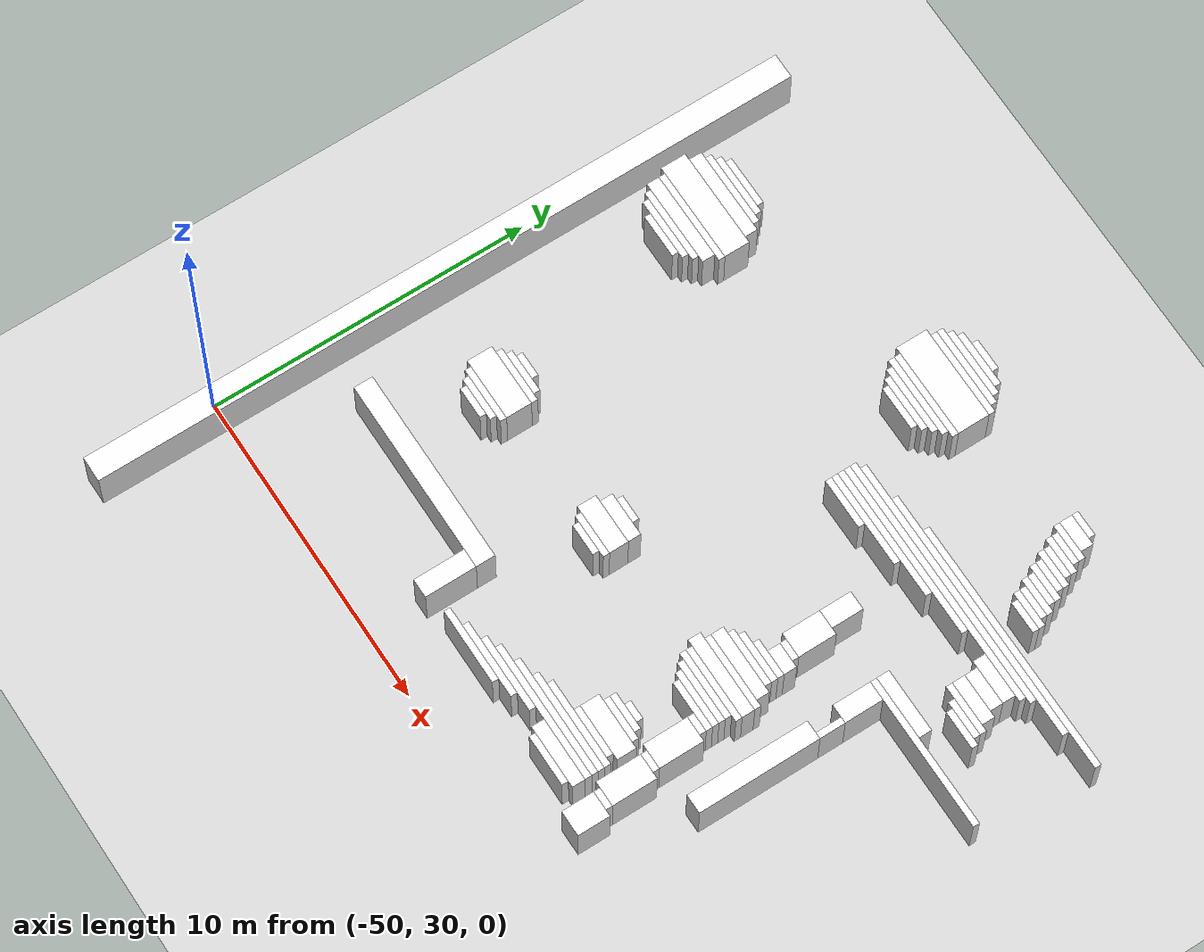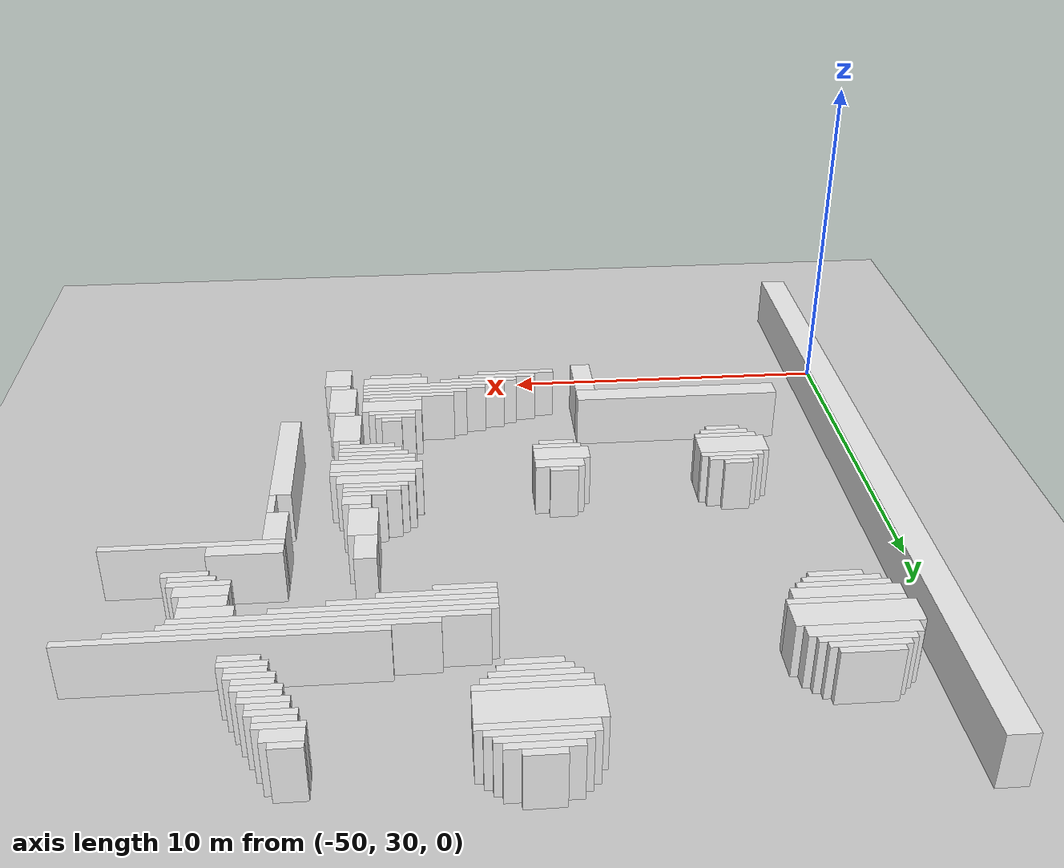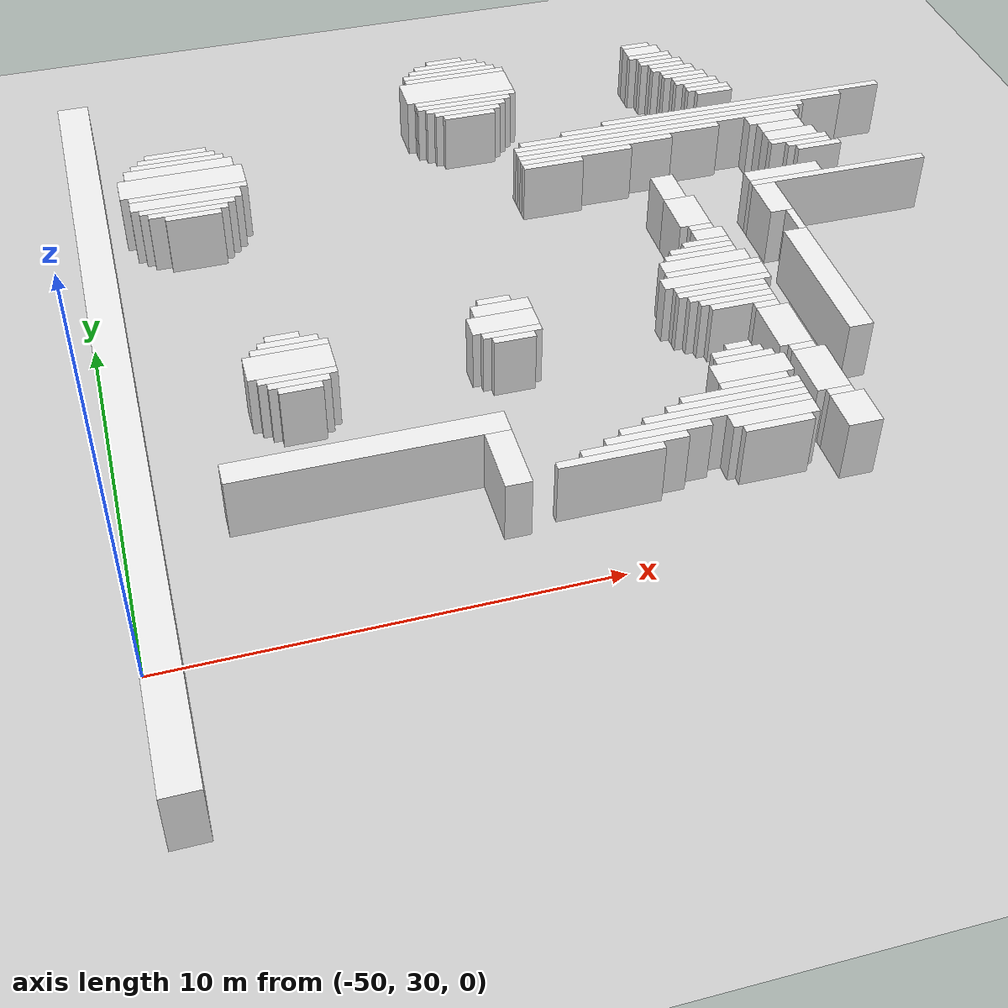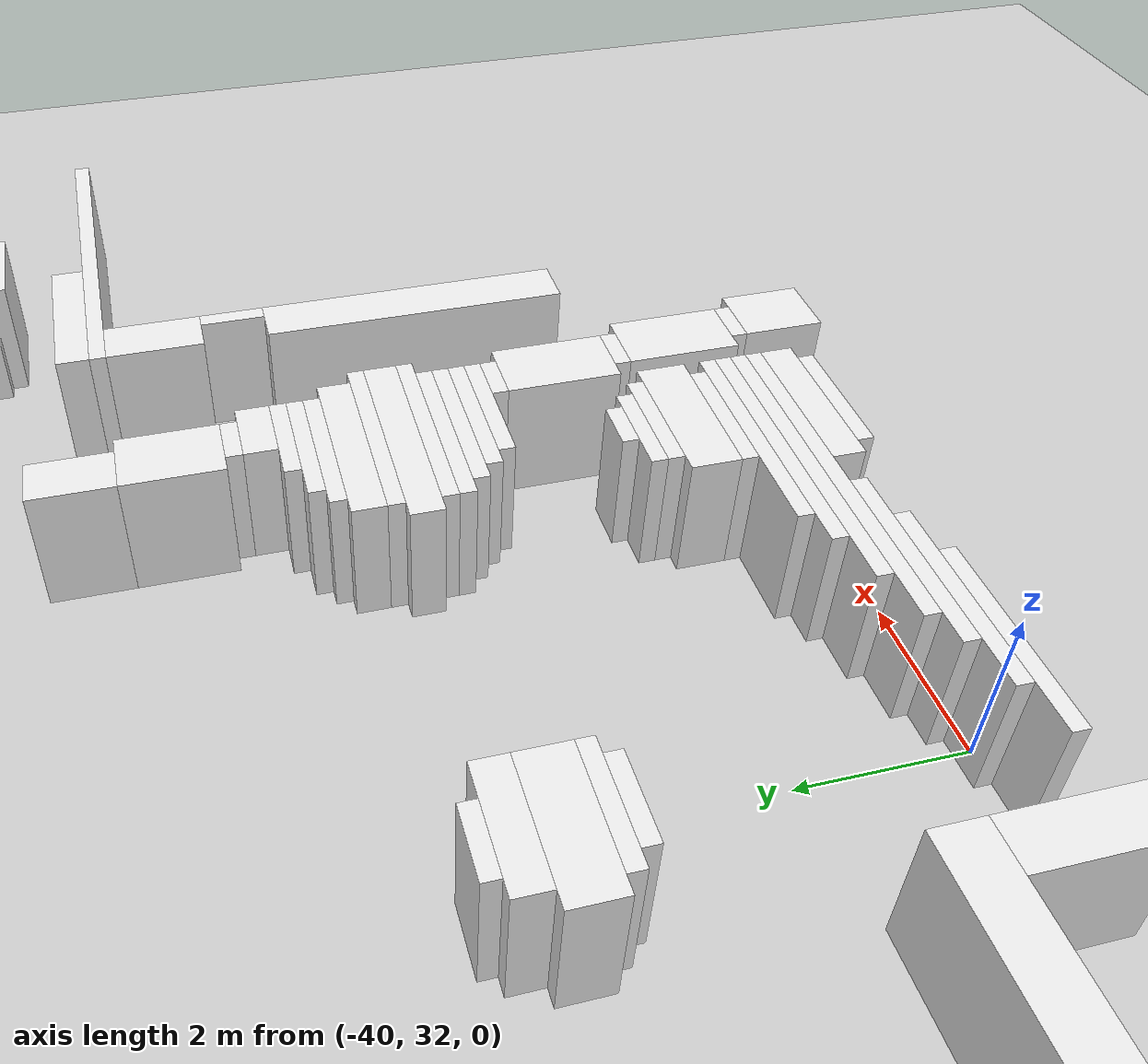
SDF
<sdf version="1.7">
 <world name="default">
  <model name="ground_plane">
   <static>1</static>
   <link name="link">
    <collision name="collision">
     <geometry><plane><normal>0 0 1</normal><size>120 120</size></plane></geometry>
    </collision>
    <visual name="visual">
     <geometry><plane><normal>0 0 1</normal><size>120 120</size></plane></geometry>
     <material>
      <script><uri>file://media/materials/scripts/gazebo.material</uri><name>Gazebo/Grey</name></script>
     </material>
    </visual>
   </link>
  </model>
  <model name="random_complex_01_model">
   <static>1</static>
   <link name="obs_8">
    <pose>-39.3000 48.1000 0.8000 0 0 0</pose>
    <collision name="obs_8_col"><geometry><box><size>1.0000 0.2000 1.6000</size></box></geometry></collision>
    <visual name="obs_8_vis">
     <geometry><box><size>1.0000 0.2000 1.6000</size></box></geometry>
     <material>
      <script><uri>file://media/materials/scripts/gazebo.material</uri><name>Gazebo/White</name></script>
     </material>
    </visual>
   </link>
   <link name="obs_15">
    <pose>-39.3000 47.9000 0.8000 0 0 0</pose>
    <collision name="obs_15_col"><geometry><box><size>1.8000 0.2000 1.6000</size></box></geometry></collision>
    <visual name="obs_15_vis">
     <geometry><box><size>1.8000 0.2000 1.6000</size></box></geometry>
     <material>
      <script><uri>file://media/materials/scripts/gazebo.material</uri><name>Gazebo/White</name></script>
     </material>
    </visual>
   </link>
   <link name="obs_23">
    <pose>-39.3000 47.7000 0.8000 0 0 0</pose>
    <collision name="obs_23_col"><geometry><box><size>2.2000 0.2000 1.6000</size></box></geometry></collision>
    <visual name="obs_23_vis">
     <geometry><box><size>2.2000 0.2000 1.6000</size></box></geometry>
     <material>
      <script><uri>file://media/materials/scripts/gazebo.material</uri><name>Gazebo/White</name></script>
     </material>
    </visual>
   </link>
   <link name="obs_29">
    <pose>-39.3000 47.5000 0.8000 0 0 0</pose>
    <collision name="obs_29_col"><geometry><box><size>2.6000 0.2000 1.6000</size></box></geometry></collision>
    <visual name="obs_29_vis">
     <geometry><box><size>2.6000 0.2000 1.6000</size></box></geometry>
     <material>
      <script><uri>file://media/materials/scripts/gazebo.material</uri><name>Gazebo/White</name></script>
     </material>
    </visual>
   </link>
   <link name="obs_30">
    <pose>-33.8000 47.5000 0.8000 0 0 0</pose>
    <collision name="obs_30_col"><geometry><box><size>0.8000 0.2000 1.6000</size></box></geometry></collision>
    <visual name="obs_30_vis">
     <geometry><box><size>0.8000 0.2000 1.6000</size></box></geometry>
     <material>
      <script><uri>file://media/materials/scripts/gazebo.material</uri><name>Gazebo/White</name></script>
     </material>
    </visual>
   </link>
   <link name="obs_36">
    <pose>-39.2000 47.3000 0.8000 0 0 0</pose>
    <collision name="obs_36_col"><geometry><box><size>2.8000 0.2000 1.6000</size></box></geometry></collision>
    <visual name="obs_36_vis">
     <geometry><box><size>2.8000 0.2000 1.6000</size></box></geometry>
     <material>
      <script><uri>file://media/materials/scripts/gazebo.material</uri><name>Gazebo/White</name></script>
     </material>
    </visual>
   </link>
   <link name="obs_42">
    <pose>-33.7000 47.2000 0.8000 0 0 0</pose>
    <collision name="obs_42_col"><geometry><box><size>1.0000 0.4000 1.6000</size></box></geometry></collision>
    <visual name="obs_42_vis">
     <geometry><box><size>1.0000 0.4000 1.6000</size></box></geometry>
     <material>
      <script><uri>file://media/materials/scripts/gazebo.material</uri><name>Gazebo/White</name></script>
     </material>
    </visual>
   </link>
   <link name="obs_49">
    <pose>-33.6000 46.9000 0.8000 0 0 0</pose>
    <collision name="obs_49_col"><geometry><box><size>1.2000 0.2000 1.6000</size></box></geometry></collision>
    <visual name="obs_49_vis">
     <geometry><box><size>1.2000 0.2000 1.6000</size></box></geometry>
     <material>
      <script><uri>file://media/materials/scripts/gazebo.material</uri><name>Gazebo/White</name></script>
     </material>
    </visual>
   </link>
   <link name="obs_56">
    <pose>-33.5000 46.7000 0.8000 0 0 0</pose>
    <collision name="obs_56_col"><geometry><box><size>1.0000 0.2000 1.6000</size></box></geometry></collision>
    <visual name="obs_56_vis">
     <geometry><box><size>1.0000 0.2000 1.6000</size></box></geometry>
     <material>
      <script><uri>file://media/materials/scripts/gazebo.material</uri><name>Gazebo/White</name></script>
     </material>
    </visual>
   </link>
   <link name="obs_63">
    <pose>-33.4000 46.5000 0.8000 0 0 0</pose>
    <collision name="obs_63_col"><geometry><box><size>1.2000 0.2000 1.6000</size></box></geometry></collision>
    <visual name="obs_63_vis">
     <geometry><box><size>1.2000 0.2000 1.6000</size></box></geometry>
     <material>
      <script><uri>file://media/materials/scripts/gazebo.material</uri><name>Gazebo/White</name></script>
     </material>
    </visual>
   </link>
   <link name="obs_69">
    <pose>-39.3000 46.7000 0.8000 0 0 0</pose>
    <collision name="obs_69_col"><geometry><box><size>3.0000 1.0000 1.6000</size></box></geometry></collision>
    <visual name="obs_69_vis">
     <geometry><box><size>3.0000 1.0000 1.6000</size></box></geometry>
     <material>
      <script><uri>file://media/materials/scripts/gazebo.material</uri><name>Gazebo/White</name></script>
     </material>
    </visual>
   </link>
   <link name="obs_70">
    <pose>-33.3000 46.3000 0.8000 0 0 0</pose>
    <collision name="obs_70_col"><geometry><box><size>1.0000 0.2000 1.6000</size></box></geometry></collision>
    <visual name="obs_70_vis">
     <geometry><box><size>1.0000 0.2000 1.6000</size></box></geometry>
     <material>
      <script><uri>file://media/materials/scripts/gazebo.material</uri><name>Gazebo/White</name></script>
     </material>
    </visual>
   </link>
   <link name="obs_79">
    <pose>-39.2000 46.1000 0.8000 0 0 0</pose>
    <collision name="obs_79_col"><geometry><box><size>2.8000 0.2000 1.6000</size></box></geometry></collision>
    <visual name="obs_79_vis">
     <geometry><box><size>2.8000 0.2000 1.6000</size></box></geometry>
     <material>
      <script><uri>file://media/materials/scripts/gazebo.material</uri><name>Gazebo/White</name></script>
     </material>
    </visual>
   </link>
   <link name="obs_80">
    <pose>-33.2000 46.1000 0.8000 0 0 0</pose>
    <collision name="obs_80_col"><geometry><box><size>1.2000 0.2000 1.6000</size></box></geometry></collision>
    <visual name="obs_80_vis">
     <geometry><box><size>1.2000 0.2000 1.6000</size></box></geometry>
     <material>
      <script><uri>file://media/materials/scripts/gazebo.material</uri><name>Gazebo/White</name></script>
     </material>
    </visual>
   </link>
   <link name="obs_88">
    <pose>-39.3000 45.9000 0.8000 0 0 0</pose>
    <collision name="obs_88_col"><geometry><box><size>2.6000 0.2000 1.6000</size></box></geometry></collision>
    <visual name="obs_88_vis">
     <geometry><box><size>2.6000 0.2000 1.6000</size></box></geometry>
     <material>
      <script><uri>file://media/materials/scripts/gazebo.material</uri><name>Gazebo/White</name></script>
     </material>
    </visual>
   </link>
   <link name="obs_89">
    <pose>-33.1000 45.9000 0.8000 0 0 0</pose>
    <collision name="obs_89_col"><geometry><box><size>1.0000 0.2000 1.6000</size></box></geometry></collision>
    <visual name="obs_89_vis">
     <geometry><box><size>1.0000 0.2000 1.6000</size></box></geometry>
     <material>
      <script><uri>file://media/materials/scripts/gazebo.material</uri><name>Gazebo/White</name></script>
     </material>
    </visual>
   </link>
   <link name="obs_97">
    <pose>-39.3000 45.7000 0.8000 0 0 0</pose>
    <collision name="obs_97_col"><geometry><box><size>2.2000 0.2000 1.6000</size></box></geometry></collision>
    <visual name="obs_97_vis">
     <geometry><box><size>2.2000 0.2000 1.6000</size></box></geometry>
     <material>
      <script><uri>file://media/materials/scripts/gazebo.material</uri><name>Gazebo/White</name></script>
     </material>
    </visual>
   </link>
   <link name="obs_98">
    <pose>-33.0000 45.7000 0.8000 0 0 0</pose>
    <collision name="obs_98_col"><geometry><box><size>1.2000 0.2000 1.6000</size></box></geometry></collision>
    <visual name="obs_98_vis">
     <geometry><box><size>1.2000 0.2000 1.6000</size></box></geometry>
     <material>
      <script><uri>file://media/materials/scripts/gazebo.material</uri><name>Gazebo/White</name></script>
     </material>
    </visual>
   </link>
   <link name="obs_107">
    <pose>-47.2000 45.5000 0.8000 0 0 0</pose>
    <collision name="obs_107_col"><geometry><box><size>1.6000 0.2000 1.6000</size></box></geometry></collision>
    <visual name="obs_107_vis">
     <geometry><box><size>1.6000 0.2000 1.6000</size></box></geometry>
     <material>
      <script><uri>file://media/materials/scripts/gazebo.material</uri><name>Gazebo/White</name></script>
     </material>
    </visual>
   </link>
   <link name="obs_108">
    <pose>-39.3000 45.5000 0.8000 0 0 0</pose>
    <collision name="obs_108_col"><geometry><box><size>1.8000 0.2000 1.6000</size></box></geometry></collision>
    <visual name="obs_108_vis">
     <geometry><box><size>1.8000 0.2000 1.6000</size></box></geometry>
     <material>
      <script><uri>file://media/materials/scripts/gazebo.material</uri><name>Gazebo/White</name></script>
     </material>
    </visual>
   </link>
   <link name="obs_109">
    <pose>-32.9000 45.5000 0.8000 0 0 0</pose>
    <collision name="obs_109_col"><geometry><box><size>1.0000 0.2000 1.6000</size></box></geometry></collision>
    <visual name="obs_109_vis">
     <geometry><box><size>1.0000 0.2000 1.6000</size></box></geometry>
     <material>
      <script><uri>file://media/materials/scripts/gazebo.material</uri><name>Gazebo/White</name></script>
     </material>
    </visual>
   </link>
   <link name="obs_114">
    <pose>-47.2000 45.3000 0.8000 0 0 0</pose>
    <collision name="obs_114_col"><geometry><box><size>2.0000 0.2000 1.6000</size></box></geometry></collision>
    <visual name="obs_114_vis">
     <geometry><box><size>2.0000 0.2000 1.6000</size></box></geometry>
     <material>
      <script><uri>file://media/materials/scripts/gazebo.material</uri><name>Gazebo/White</name></script>
     </material>
    </visual>
   </link>
   <link name="obs_115">
    <pose>-39.3000 45.3000 0.8000 0 0 0</pose>
    <collision name="obs_115_col"><geometry><box><size>1.4000 0.2000 1.6000</size></box></geometry></collision>
    <visual name="obs_115_vis">
     <geometry><box><size>1.4000 0.2000 1.6000</size></box></geometry>
     <material>
      <script><uri>file://media/materials/scripts/gazebo.material</uri><name>Gazebo/White</name></script>
     </material>
    </visual>
   </link>
   <link name="obs_116">
    <pose>-32.8000 45.3000 0.8000 0 0 0</pose>
    <collision name="obs_116_col"><geometry><box><size>1.2000 0.2000 1.6000</size></box></geometry></collision>
    <visual name="obs_116_vis">
     <geometry><box><size>1.2000 0.2000 1.6000</size></box></geometry>
     <material>
      <script><uri>file://media/materials/scripts/gazebo.material</uri><name>Gazebo/White</name></script>
     </material>
    </visual>
   </link>
   <link name="obs_125">
    <pose>-47.2000 45.1000 0.8000 0 0 0</pose>
    <collision name="obs_125_col"><geometry><box><size>2.4000 0.2000 1.6000</size></box></geometry></collision>
    <visual name="obs_125_vis">
     <geometry><box><size>2.4000 0.2000 1.6000</size></box></geometry>
     <material>
      <script><uri>file://media/materials/scripts/gazebo.material</uri><name>Gazebo/White</name></script>
     </material>
    </visual>
   </link>
   <link name="obs_126">
    <pose>-32.7000 45.1000 0.8000 0 0 0</pose>
    <collision name="obs_126_col"><geometry><box><size>1.0000 0.2000 1.6000</size></box></geometry></collision>
    <visual name="obs_126_vis">
     <geometry><box><size>1.0000 0.2000 1.6000</size></box></geometry>
     <material>
      <script><uri>file://media/materials/scripts/gazebo.material</uri><name>Gazebo/White</name></script>
     </material>
    </visual>
   </link>
   <link name="obs_134">
    <pose>-32.6000 44.9000 0.8000 0 0 0</pose>
    <collision name="obs_134_col"><geometry><box><size>1.2000 0.2000 1.6000</size></box></geometry></collision>
    <visual name="obs_134_vis">
     <geometry><box><size>1.2000 0.2000 1.6000</size></box></geometry>
     <material>
      <script><uri>file://media/materials/scripts/gazebo.material</uri><name>Gazebo/White</name></script>
     </material>
    </visual>
   </link>
   <link name="obs_142">
    <pose>-47.2000 44.8000 0.8000 0 0 0</pose>
    <collision name="obs_142_col"><geometry><box><size>2.8000 0.4000 1.6000</size></box></geometry></collision>
    <visual name="obs_142_vis">
     <geometry><box><size>2.8000 0.4000 1.6000</size></box></geometry>
     <material>
      <script><uri>file://media/materials/scripts/gazebo.material</uri><name>Gazebo/White</name></script>
     </material>
    </visual>
   </link>
   <link name="obs_143">
    <pose>-32.5000 44.7000 0.8000 0 0 0</pose>
    <collision name="obs_143_col"><geometry><box><size>1.0000 0.2000 1.6000</size></box></geometry></collision>
    <visual name="obs_143_vis">
     <geometry><box><size>1.0000 0.2000 1.6000</size></box></geometry>
     <material>
      <script><uri>file://media/materials/scripts/gazebo.material</uri><name>Gazebo/White</name></script>
     </material>
    </visual>
   </link>
   <link name="obs_170">
    <pose>-47.2000 44.2000 0.8000 0 0 0</pose>
    <collision name="obs_170_col"><geometry><box><size>3.2000 0.8000 1.6000</size></box></geometry></collision>
    <visual name="obs_170_vis">
     <geometry><box><size>3.2000 0.8000 1.6000</size></box></geometry>
     <material>
      <script><uri>file://media/materials/scripts/gazebo.material</uri><name>Gazebo/White</name></script>
     </material>
    </visual>
   </link>
   <link name="obs_172">
    <pose>-32.0000 43.9000 0.8000 0 0 0</pose>
    <collision name="obs_172_col"><geometry><box><size>8.0000 0.2000 1.6000</size></box></geometry></collision>
    <visual name="obs_172_vis">
     <geometry><box><size>8.0000 0.2000 1.6000</size></box></geometry>
     <material>
      <script><uri>file://media/materials/scripts/gazebo.material</uri><name>Gazebo/White</name></script>
     </material>
    </visual>
   </link>
   <link name="obs_179">
    <pose>-47.1000 43.7000 0.8000 0 0 0</pose>
    <collision name="obs_179_col"><geometry><box><size>3.0000 0.2000 1.6000</size></box></geometry></collision>
    <visual name="obs_179_vis">
     <geometry><box><size>3.0000 0.2000 1.6000</size></box></geometry>
     <material>
      <script><uri>file://media/materials/scripts/gazebo.material</uri><name>Gazebo/White</name></script>
     </material>
    </visual>
   </link>
   <link name="obs_180">
    <pose>-33.2000 43.7000 0.8000 0 0 0</pose>
    <collision name="obs_180_col"><geometry><box><size>8.0000 0.2000 1.6000</size></box></geometry></collision>
    <visual name="obs_180_vis">
     <geometry><box><size>8.0000 0.2000 1.6000</size></box></geometry>
     <material>
      <script><uri>file://media/materials/scripts/gazebo.material</uri><name>Gazebo/White</name></script>
     </material>
    </visual>
   </link>
   <link name="obs_187">
    <pose>-34.4000 43.5000 0.8000 0 0 0</pose>
    <collision name="obs_187_col"><geometry><box><size>8.0000 0.2000 1.6000</size></box></geometry></collision>
    <visual name="obs_187_vis">
     <geometry><box><size>8.0000 0.2000 1.6000</size></box></geometry>
     <material>
      <script><uri>file://media/materials/scripts/gazebo.material</uri><name>Gazebo/White</name></script>
     </material>
    </visual>
   </link>
   <link name="obs_193">
    <pose>-47.2000 43.4000 0.8000 0 0 0</pose>
    <collision name="obs_193_col"><geometry><box><size>2.8000 0.4000 1.6000</size></box></geometry></collision>
    <visual name="obs_193_vis">
     <geometry><box><size>2.8000 0.4000 1.6000</size></box></geometry>
     <material>
      <script><uri>file://media/materials/scripts/gazebo.material</uri><name>Gazebo/White</name></script>
     </material>
    </visual>
   </link>
   <link name="obs_194">
    <pose>-34.6000 43.3000 0.8000 0 0 0</pose>
    <collision name="obs_194_col"><geometry><box><size>8.0000 0.2000 1.6000</size></box></geometry></collision>
    <visual name="obs_194_vis">
     <geometry><box><size>8.0000 0.2000 1.6000</size></box></geometry>
     <material>
      <script><uri>file://media/materials/scripts/gazebo.material</uri><name>Gazebo/White</name></script>
     </material>
    </visual>
   </link>
   <link name="obs_200">
    <pose>-47.2000 43.1000 0.8000 0 0 0</pose>
    <collision name="obs_200_col"><geometry><box><size>2.4000 0.2000 1.6000</size></box></geometry></collision>
    <visual name="obs_200_vis">
     <geometry><box><size>2.4000 0.2000 1.6000</size></box></geometry>
     <material>
      <script><uri>file://media/materials/scripts/gazebo.material</uri><name>Gazebo/White</name></script>
     </material>
    </visual>
   </link>
   <link name="obs_201">
    <pose>-35.8000 43.1000 0.8000 0 0 0</pose>
    <collision name="obs_201_col"><geometry><box><size>5.6000 0.2000 1.6000</size></box></geometry></collision>
    <visual name="obs_201_vis">
     <geometry><box><size>5.6000 0.2000 1.6000</size></box></geometry>
     <material>
      <script><uri>file://media/materials/scripts/gazebo.material</uri><name>Gazebo/White</name></script>
     </material>
    </visual>
   </link>
   <link name="obs_203">
    <pose>-31.5000 43.0000 0.8000 0 0 0</pose>
    <collision name="obs_203_col"><geometry><box><size>1.4000 0.4000 1.6000</size></box></geometry></collision>
    <visual name="obs_203_vis">
     <geometry><box><size>1.4000 0.4000 1.6000</size></box></geometry>
     <material>
      <script><uri>file://media/materials/scripts/gazebo.material</uri><name>Gazebo/White</name></script>
     </material>
    </visual>
   </link>
   <link name="obs_206">
    <pose>-47.2000 42.9000 0.8000 0 0 0</pose>
    <collision name="obs_206_col"><geometry><box><size>2.0000 0.2000 1.6000</size></box></geometry></collision>
    <visual name="obs_206_vis">
     <geometry><box><size>2.0000 0.2000 1.6000</size></box></geometry>
     <material>
      <script><uri>file://media/materials/scripts/gazebo.material</uri><name>Gazebo/White</name></script>
     </material>
    </visual>
   </link>
   <link name="obs_207">
    <pose>-36.5000 42.9000 0.8000 0 0 0</pose>
    <collision name="obs_207_col"><geometry><box><size>4.2000 0.2000 1.6000</size></box></geometry></collision>
    <visual name="obs_207_vis">
     <geometry><box><size>4.2000 0.2000 1.6000</size></box></geometry>
     <material>
      <script><uri>file://media/materials/scripts/gazebo.material</uri><name>Gazebo/White</name></script>
     </material>
    </visual>
   </link>
   <link name="obs_212">
    <pose>-47.1000 42.7000 0.8000 0 0 0</pose>
    <collision name="obs_212_col"><geometry><box><size>1.4000 0.2000 1.6000</size></box></geometry></collision>
    <visual name="obs_212_vis">
     <geometry><box><size>1.4000 0.2000 1.6000</size></box></geometry>
     <material>
      <script><uri>file://media/materials/scripts/gazebo.material</uri><name>Gazebo/White</name></script>
     </material>
    </visual>
   </link>
   <link name="obs_213">
    <pose>-37.1000 42.7000 0.8000 0 0 0</pose>
    <collision name="obs_213_col"><geometry><box><size>3.0000 0.2000 1.6000</size></box></geometry></collision>
    <visual name="obs_213_vis">
     <geometry><box><size>3.0000 0.2000 1.6000</size></box></geometry>
     <material>
      <script><uri>file://media/materials/scripts/gazebo.material</uri><name>Gazebo/White</name></script>
     </material>
    </visual>
   </link>
   <link name="obs_218">
    <pose>-31.4000 42.6000 0.8000 0 0 0</pose>
    <collision name="obs_218_col"><geometry><box><size>1.2000 0.4000 1.6000</size></box></geometry></collision>
    <visual name="obs_218_vis">
     <geometry><box><size>1.2000 0.4000 1.6000</size></box></geometry>
     <material>
      <script><uri>file://media/materials/scripts/gazebo.material</uri><name>Gazebo/White</name></script>
     </material>
    </visual>
   </link>
   <link name="obs_219">
    <pose>-37.8000 42.5000 0.8000 0 0 0</pose>
    <collision name="obs_219_col"><geometry><box><size>1.6000 0.2000 1.6000</size></box></geometry></collision>
    <visual name="obs_219_vis">
     <geometry><box><size>1.6000 0.2000 1.6000</size></box></geometry>
     <material>
      <script><uri>file://media/materials/scripts/gazebo.material</uri><name>Gazebo/White</name></script>
     </material>
    </visual>
   </link>
   <link name="obs_231">
    <pose>-31.3000 42.2000 0.8000 0 0 0</pose>
    <collision name="obs_231_col"><geometry><box><size>1.4000 0.4000 1.6000</size></box></geometry></collision>
    <visual name="obs_231_vis">
     <geometry><box><size>1.4000 0.4000 1.6000</size></box></geometry>
     <material>
      <script><uri>file://media/materials/scripts/gazebo.material</uri><name>Gazebo/White</name></script>
     </material>
    </visual>
   </link>
   <link name="obs_238">
    <pose>-31.2000 41.9000 0.8000 0 0 0</pose>
    <collision name="obs_238_col"><geometry><box><size>1.6000 0.2000 1.6000</size></box></geometry></collision>
    <visual name="obs_238_vis">
     <geometry><box><size>1.6000 0.2000 1.6000</size></box></geometry>
     <material>
      <script><uri>file://media/materials/scripts/gazebo.material</uri><name>Gazebo/White</name></script>
     </material>
    </visual>
   </link>
   <link name="obs_242">
    <pose>-31.0000 41.7000 0.8000 0 0 0</pose>
    <collision name="obs_242_col"><geometry><box><size>1.2000 0.2000 1.6000</size></box></geometry></collision>
    <visual name="obs_242_vis">
     <geometry><box><size>1.2000 0.2000 1.6000</size></box></geometry>
     <material>
      <script><uri>file://media/materials/scripts/gazebo.material</uri><name>Gazebo/White</name></script>
     </material>
    </visual>
   </link>
   <link name="obs_250">
    <pose>-30.8000 41.5000 0.8000 0 0 0</pose>
    <collision name="obs_250_col"><geometry><box><size>1.2000 0.2000 1.6000</size></box></geometry></collision>
    <visual name="obs_250_vis">
     <geometry><box><size>1.2000 0.2000 1.6000</size></box></geometry>
     <material>
      <script><uri>file://media/materials/scripts/gazebo.material</uri><name>Gazebo/White</name></script>
     </material>
    </visual>
   </link>
   <link name="obs_282">
    <pose>-32.2000 40.6000 0.8000 0 0 0</pose>
    <collision name="obs_282_col"><geometry><box><size>2.0000 0.4000 1.6000</size></box></geometry></collision>
    <visual name="obs_282_vis">
     <geometry><box><size>2.0000 0.4000 1.6000</size></box></geometry>
     <material>
      <script><uri>file://media/materials/scripts/gazebo.material</uri><name>Gazebo/White</name></script>
     </material>
    </visual>
   </link>
   <link name="obs_289">
    <pose>-35.3000 40.7000 0.8000 0 0 0</pose>
    <collision name="obs_289_col"><geometry><box><size>0.6000 1.0000 1.6000</size></box></geometry></collision>
    <visual name="obs_289_vis">
     <geometry><box><size>0.6000 1.0000 1.6000</size></box></geometry>
     <material>
      <script><uri>file://media/materials/scripts/gazebo.material</uri><name>Gazebo/White</name></script>
     </material>
    </visual>
   </link>
   <link name="obs_291">
    <pose>-30.8000 40.3000 0.8000 0 0 0</pose>
    <collision name="obs_291_col"><geometry><box><size>4.8000 0.2000 1.6000</size></box></geometry></collision>
    <visual name="obs_291_vis">
     <geometry><box><size>4.8000 0.2000 1.6000</size></box></geometry>
     <material>
      <script><uri>file://media/materials/scripts/gazebo.material</uri><name>Gazebo/White</name></script>
     </material>
    </visual>
   </link>
   <link name="obs_311">
    <pose>-35.2000 39.6000 0.8000 0 0 0</pose>
    <collision name="obs_311_col"><geometry><box><size>0.8000 1.2000 1.6000</size></box></geometry></collision>
    <visual name="obs_311_vis">
     <geometry><box><size>0.8000 1.2000 1.6000</size></box></geometry>
     <material>
      <script><uri>file://media/materials/scripts/gazebo.material</uri><name>Gazebo/White</name></script>
     </material>
    </visual>
   </link>
   <link name="obs_312">
    <pose>-32.9000 39.6000 0.8000 0 0 0</pose>
    <collision name="obs_312_col"><geometry><box><size>0.6000 1.2000 1.6000</size></box></geometry></collision>
    <visual name="obs_312_vis">
     <geometry><box><size>0.6000 1.2000 1.6000</size></box></geometry>
     <material>
      <script><uri>file://media/materials/scripts/gazebo.material</uri><name>Gazebo/White</name></script>
     </material>
    </visual>
   </link>
   <link name="obs_315">
    <pose>-35.1000 38.9000 0.8000 0 0 0</pose>
    <collision name="obs_315_col"><geometry><box><size>0.6000 0.2000 1.6000</size></box></geometry></collision>
    <visual name="obs_315_vis">
     <geometry><box><size>0.6000 0.2000 1.6000</size></box></geometry>
     <material>
      <script><uri>file://media/materials/scripts/gazebo.material</uri><name>Gazebo/White</name></script>
     </material>
    </visual>
   </link>
   <link name="obs_321">
    <pose>-35.0000 38.6000 0.8000 0 0 0</pose>
    <collision name="obs_321_col"><geometry><box><size>0.8000 0.4000 1.6000</size></box></geometry></collision>
    <visual name="obs_321_vis">
     <geometry><box><size>0.8000 0.4000 1.6000</size></box></geometry>
     <material>
      <script><uri>file://media/materials/scripts/gazebo.material</uri><name>Gazebo/White</name></script>
     </material>
    </visual>
   </link>
   <link name="obs_324">
    <pose>-32.7000 38.6000 0.8000 0 0 0</pose>
    <collision name="obs_324_col"><geometry><box><size>0.2000 0.8000 1.6000</size></box></geometry></collision>
    <visual name="obs_324_vis">
     <geometry><box><size>0.2000 0.8000 1.6000</size></box></geometry>
     <material>
      <script><uri>file://media/materials/scripts/gazebo.material</uri><name>Gazebo/White</name></script>
     </material>
    </visual>
   </link>
   <link name="obs_325">
    <pose>-35.2000 38.3000 0.8000 0 0 0</pose>
    <collision name="obs_325_col"><geometry><box><size>1.2000 0.2000 1.6000</size></box></geometry></collision>
    <visual name="obs_325_vis">
     <geometry><box><size>1.2000 0.2000 1.6000</size></box></geometry>
     <material>
      <script><uri>file://media/materials/scripts/gazebo.material</uri><name>Gazebo/White</name></script>
     </material>
    </visual>
   </link>
   <link name="obs_331">
    <pose>-35.4000 38.1000 0.8000 0 0 0</pose>
    <collision name="obs_331_col"><geometry><box><size>1.6000 0.2000 1.6000</size></box></geometry></collision>
    <visual name="obs_331_vis">
     <geometry><box><size>1.6000 0.2000 1.6000</size></box></geometry>
     <material>
      <script><uri>file://media/materials/scripts/gazebo.material</uri><name>Gazebo/White</name></script>
     </material>
    </visual>
   </link>
   <link name="obs_339">
    <pose>-35.5000 37.9000 0.8000 0 0 0</pose>
    <collision name="obs_339_col"><geometry><box><size>1.8000 0.2000 1.6000</size></box></geometry></collision>
    <visual name="obs_339_vis">
     <geometry><box><size>1.8000 0.2000 1.6000</size></box></geometry>
     <material>
      <script><uri>file://media/materials/scripts/gazebo.material</uri><name>Gazebo/White</name></script>
     </material>
    </visual>
   </link>
   <link name="obs_350">
    <pose>-35.5000 37.6000 0.8000 0 0 0</pose>
    <collision name="obs_350_col"><geometry><box><size>2.2000 0.4000 1.6000</size></box></geometry></collision>
    <visual name="obs_350_vis">
     <geometry><box><size>2.2000 0.4000 1.6000</size></box></geometry>
     <material>
      <script><uri>file://media/materials/scripts/gazebo.material</uri><name>Gazebo/White</name></script>
     </material>
    </visual>
   </link>
   <link name="obs_352">
    <pose>-45.8000 37.5000 0.8000 0 0 0</pose>
    <collision name="obs_352_col"><geometry><box><size>0.8000 0.2000 1.6000</size></box></geometry></collision>
    <visual name="obs_352_vis">
     <geometry><box><size>0.8000 0.2000 1.6000</size></box></geometry>
     <material>
      <script><uri>file://media/materials/scripts/gazebo.material</uri><name>Gazebo/White</name></script>
     </material>
    </visual>
   </link>
   <link name="obs_353">
    <pose>-40.8000 37.5000 0.8000 0 0 0</pose>
    <collision name="obs_353_col"><geometry><box><size>0.8000 0.2000 1.6000</size></box></geometry></collision>
    <visual name="obs_353_vis">
     <geometry><box><size>0.8000 0.2000 1.6000</size></box></geometry>
     <material>
      <script><uri>file://media/materials/scripts/gazebo.material</uri><name>Gazebo/White</name></script>
     </material>
    </visual>
   </link>
   <link name="obs_360">
    <pose>-45.7000 37.3000 0.8000 0 0 0</pose>
    <collision name="obs_360_col"><geometry><box><size>1.4000 0.2000 1.6000</size></box></geometry></collision>
    <visual name="obs_360_vis">
     <geometry><box><size>1.4000 0.2000 1.6000</size></box></geometry>
     <material>
      <script><uri>file://media/materials/scripts/gazebo.material</uri><name>Gazebo/White</name></script>
     </material>
    </visual>
   </link>
   <link name="obs_361">
    <pose>-35.4000 37.3000 0.8000 0 0 0</pose>
    <collision name="obs_361_col"><geometry><box><size>2.4000 0.2000 1.6000</size></box></geometry></collision>
    <visual name="obs_361_vis">
     <geometry><box><size>2.4000 0.2000 1.6000</size></box></geometry>
     <material>
      <script><uri>file://media/materials/scripts/gazebo.material</uri><name>Gazebo/White</name></script>
     </material>
    </visual>
   </link>
   <link name="obs_365">
    <pose>-40.7000 37.2000 0.8000 0 0 0</pose>
    <collision name="obs_365_col"><geometry><box><size>1.4000 0.4000 1.6000</size></box></geometry></collision>
    <visual name="obs_365_vis">
     <geometry><box><size>1.4000 0.4000 1.6000</size></box></geometry>
     <material>
      <script><uri>file://media/materials/scripts/gazebo.material</uri><name>Gazebo/White</name></script>
     </material>
    </visual>
   </link>
   <link name="obs_367">
    <pose>-45.7000 37.1000 0.8000 0 0 0</pose>
    <collision name="obs_367_col"><geometry><box><size>1.8000 0.2000 1.6000</size></box></geometry></collision>
    <visual name="obs_367_vis">
     <geometry><box><size>1.8000 0.2000 1.6000</size></box></geometry>
     <material>
      <script><uri>file://media/materials/scripts/gazebo.material</uri><name>Gazebo/White</name></script>
     </material>
    </visual>
   </link>
   <link name="obs_373">
    <pose>-35.5000 37.0000 0.8000 0 0 0</pose>
    <collision name="obs_373_col"><geometry><box><size>2.6000 0.4000 1.6000</size></box></geometry></collision>
    <visual name="obs_373_vis">
     <geometry><box><size>2.6000 0.4000 1.6000</size></box></geometry>
     <material>
      <script><uri>file://media/materials/scripts/gazebo.material</uri><name>Gazebo/White</name></script>
     </material>
    </visual>
   </link>
   <link name="obs_379">
    <pose>-35.4000 36.7000 0.8000 0 0 0</pose>
    <collision name="obs_379_col"><geometry><box><size>2.4000 0.2000 1.6000</size></box></geometry></collision>
    <visual name="obs_379_vis">
     <geometry><box><size>2.4000 0.2000 1.6000</size></box></geometry>
     <material>
      <script><uri>file://media/materials/scripts/gazebo.material</uri><name>Gazebo/White</name></script>
     </material>
    </visual>
   </link>
   <link name="obs_385">
    <pose>-40.8000 36.7000 0.8000 0 0 0</pose>
    <collision name="obs_385_col"><geometry><box><size>1.6000 0.6000 1.6000</size></box></geometry></collision>
    <visual name="obs_385_vis">
     <geometry><box><size>1.6000 0.6000 1.6000</size></box></geometry>
     <material>
      <script><uri>file://media/materials/scripts/gazebo.material</uri><name>Gazebo/White</name></script>
     </material>
    </visual>
   </link>
   <link name="obs_387">
    <pose>-35.5000 36.5000 0.8000 0 0 0</pose>
    <collision name="obs_387_col"><geometry><box><size>2.2000 0.2000 1.6000</size></box></geometry></collision>
    <visual name="obs_387_vis">
     <geometry><box><size>2.2000 0.2000 1.6000</size></box></geometry>
     <material>
      <script><uri>file://media/materials/scripts/gazebo.material</uri><name>Gazebo/White</name></script>
     </material>
    </visual>
   </link>
   <link name="obs_393">
    <pose>-45.8000 36.6000 0.8000 0 0 0</pose>
    <collision name="obs_393_col"><geometry><box><size>2.0000 0.8000 1.6000</size></box></geometry></collision>
    <visual name="obs_393_vis">
     <geometry><box><size>2.0000 0.8000 1.6000</size></box></geometry>
     <material>
      <script><uri>file://media/materials/scripts/gazebo.material</uri><name>Gazebo/White</name></script>
     </material>
    </visual>
   </link>
   <link name="obs_395">
    <pose>-40.7000 36.3000 0.8000 0 0 0</pose>
    <collision name="obs_395_col"><geometry><box><size>1.4000 0.2000 1.6000</size></box></geometry></collision>
    <visual name="obs_395_vis">
     <geometry><box><size>1.4000 0.2000 1.6000</size></box></geometry>
     <material>
      <script><uri>file://media/materials/scripts/gazebo.material</uri><name>Gazebo/White</name></script>
     </material>
    </visual>
   </link>
   <link name="obs_396">
    <pose>-35.4000 36.3000 0.8000 0 0 0</pose>
    <collision name="obs_396_col"><geometry><box><size>2.0000 0.2000 1.6000</size></box></geometry></collision>
    <visual name="obs_396_vis">
     <geometry><box><size>2.0000 0.2000 1.6000</size></box></geometry>
     <material>
      <script><uri>file://media/materials/scripts/gazebo.material</uri><name>Gazebo/White</name></script>
     </material>
    </visual>
   </link>
   <link name="obs_404">
    <pose>-45.7000 36.1000 0.8000 0 0 0</pose>
    <collision name="obs_404_col"><geometry><box><size>1.8000 0.2000 1.6000</size></box></geometry></collision>
    <visual name="obs_404_vis">
     <geometry><box><size>1.8000 0.2000 1.6000</size></box></geometry>
     <material>
      <script><uri>file://media/materials/scripts/gazebo.material</uri><name>Gazebo/White</name></script>
     </material>
    </visual>
   </link>
   <link name="obs_405">
    <pose>-40.7000 36.1000 0.8000 0 0 0</pose>
    <collision name="obs_405_col"><geometry><box><size>1.0000 0.2000 1.6000</size></box></geometry></collision>
    <visual name="obs_405_vis">
     <geometry><box><size>1.0000 0.2000 1.6000</size></box></geometry>
     <material>
      <script><uri>file://media/materials/scripts/gazebo.material</uri><name>Gazebo/White</name></script>
     </material>
    </visual>
   </link>
   <link name="obs_406">
    <pose>-35.3000 36.1000 0.8000 0 0 0</pose>
    <collision name="obs_406_col"><geometry><box><size>1.8000 0.2000 1.6000</size></box></geometry></collision>
    <visual name="obs_406_vis">
     <geometry><box><size>1.8000 0.2000 1.6000</size></box></geometry>
     <material>
      <script><uri>file://media/materials/scripts/gazebo.material</uri><name>Gazebo/White</name></script>
     </material>
    </visual>
   </link>
   <link name="obs_416">
    <pose>-45.7000 35.9000 0.8000 0 0 0</pose>
    <collision name="obs_416_col"><geometry><box><size>1.4000 0.2000 1.6000</size></box></geometry></collision>
    <visual name="obs_416_vis">
     <geometry><box><size>1.4000 0.2000 1.6000</size></box></geometry>
     <material>
      <script><uri>file://media/materials/scripts/gazebo.material</uri><name>Gazebo/White</name></script>
     </material>
    </visual>
   </link>
   <link name="obs_417">
    <pose>-35.2000 35.9000 0.8000 0 0 0</pose>
    <collision name="obs_417_col"><geometry><box><size>1.6000 0.2000 1.6000</size></box></geometry></collision>
    <visual name="obs_417_vis">
     <geometry><box><size>1.6000 0.2000 1.6000</size></box></geometry>
     <material>
      <script><uri>file://media/materials/scripts/gazebo.material</uri><name>Gazebo/White</name></script>
     </material>
    </visual>
   </link>
   <link name="obs_424">
    <pose>-45.7000 35.7000 0.8000 0 0 0</pose>
    <collision name="obs_424_col"><geometry><box><size>1.0000 0.2000 1.6000</size></box></geometry></collision>
    <visual name="obs_424_vis">
     <geometry><box><size>1.0000 0.2000 1.6000</size></box></geometry>
     <material>
      <script><uri>file://media/materials/scripts/gazebo.material</uri><name>Gazebo/White</name></script>
     </material>
    </visual>
   </link>
   <link name="obs_425">
    <pose>-34.7000 35.7000 0.8000 0 0 0</pose>
    <collision name="obs_425_col"><geometry><box><size>0.6000 0.2000 1.6000</size></box></geometry></collision>
    <visual name="obs_425_vis">
     <geometry><box><size>0.6000 0.2000 1.6000</size></box></geometry>
     <material>
      <script><uri>file://media/materials/scripts/gazebo.material</uri><name>Gazebo/White</name></script>
     </material>
    </visual>
   </link>
   <link name="obs_462">
    <pose>-32.9000 36.3000 0.8000 0 0 0</pose>
    <collision name="obs_462_col"><geometry><box><size>0.6000 3.8000 1.6000</size></box></geometry></collision>
    <visual name="obs_462_vis">
     <geometry><box><size>0.6000 3.8000 1.6000</size></box></geometry>
     <material>
      <script><uri>file://media/materials/scripts/gazebo.material</uri><name>Gazebo/White</name></script>
     </material>
    </visual>
   </link>
   <link name="obs_465">
    <pose>-35.9000 34.5000 0.8000 0 0 0</pose>
    <collision name="obs_465_col"><geometry><box><size>0.6000 0.2000 1.6000</size></box></geometry></collision>
    <visual name="obs_465_vis">
     <geometry><box><size>0.6000 0.2000 1.6000</size></box></geometry>
     <material>
      <script><uri>file://media/materials/scripts/gazebo.material</uri><name>Gazebo/White</name></script>
     </material>
    </visual>
   </link>
   <link name="obs_472">
    <pose>-34.6000 34.9000 0.8000 0 0 0</pose>
    <collision name="obs_472_col"><geometry><box><size>0.8000 1.4000 1.6000</size></box></geometry></collision>
    <visual name="obs_472_vis">
     <geometry><box><size>0.8000 1.4000 1.6000</size></box></geometry>
     <material>
      <script><uri>file://media/materials/scripts/gazebo.material</uri><name>Gazebo/White</name></script>
     </material>
    </visual>
   </link>
   <link name="obs_475">
    <pose>-36.0000 34.3000 0.8000 0 0 0</pose>
    <collision name="obs_475_col"><geometry><box><size>1.2000 0.2000 1.6000</size></box></geometry></collision>
    <visual name="obs_475_vis">
     <geometry><box><size>1.2000 0.2000 1.6000</size></box></geometry>
     <material>
      <script><uri>file://media/materials/scripts/gazebo.material</uri><name>Gazebo/White</name></script>
     </material>
    </visual>
   </link>
   <link name="obs_485">
    <pose>-35.9000 34.1000 0.8000 0 0 0</pose>
    <collision name="obs_485_col"><geometry><box><size>1.4000 0.2000 1.6000</size></box></geometry></collision>
    <visual name="obs_485_vis">
     <geometry><box><size>1.4000 0.2000 1.6000</size></box></geometry>
     <material>
      <script><uri>file://media/materials/scripts/gazebo.material</uri><name>Gazebo/White</name></script>
     </material>
    </visual>
   </link>
   <link name="obs_486">
    <pose>-34.5000 34.1000 0.8000 0 0 0</pose>
    <collision name="obs_486_col"><geometry><box><size>0.6000 0.2000 1.6000</size></box></geometry></collision>
    <visual name="obs_486_vis">
     <geometry><box><size>0.6000 0.2000 1.6000</size></box></geometry>
     <material>
      <script><uri>file://media/materials/scripts/gazebo.material</uri><name>Gazebo/White</name></script>
     </material>
    </visual>
   </link>
   <link name="obs_512">
    <pose>-35.9000 33.7000 0.8000 0 0 0</pose>
    <collision name="obs_512_col"><geometry><box><size>1.8000 0.6000 1.6000</size></box></geometry></collision>
    <visual name="obs_512_vis">
     <geometry><box><size>1.8000 0.6000 1.6000</size></box></geometry>
     <material>
      <script><uri>file://media/materials/scripts/gazebo.material</uri><name>Gazebo/White</name></script>
     </material>
    </visual>
   </link>
   <link name="obs_521">
    <pose>-44.7000 33.5000 0.8000 0 0 0</pose>
    <collision name="obs_521_col"><geometry><box><size>6.2000 0.6000 1.6000</size></box></geometry></collision>
    <visual name="obs_521_vis">
     <geometry><box><size>6.2000 0.6000 1.6000</size></box></geometry>
     <material>
      <script><uri>file://media/materials/scripts/gazebo.material</uri><name>Gazebo/White</name></script>
     </material>
    </visual>
   </link>
   <link name="obs_524">
    <pose>-36.0000 33.3000 0.8000 0 0 0</pose>
    <collision name="obs_524_col"><geometry><box><size>1.6000 0.2000 1.6000</size></box></geometry></collision>
    <visual name="obs_524_vis">
     <geometry><box><size>1.6000 0.2000 1.6000</size></box></geometry>
     <material>
      <script><uri>file://media/materials/scripts/gazebo.material</uri><name>Gazebo/White</name></script>
     </material>
    </visual>
   </link>
   <link name="obs_530">
    <pose>-36.4000 33.1000 0.8000 0 0 0</pose>
    <collision name="obs_530_col"><geometry><box><size>2.8000 0.2000 1.6000</size></box></geometry></collision>
    <visual name="obs_530_vis">
     <geometry><box><size>2.8000 0.2000 1.6000</size></box></geometry>
     <material>
      <script><uri>file://media/materials/scripts/gazebo.material</uri><name>Gazebo/White</name></script>
     </material>
    </visual>
   </link>
   <link name="obs_535">
    <pose>-36.6000 32.9000 0.8000 0 0 0</pose>
    <collision name="obs_535_col"><geometry><box><size>3.2000 0.2000 1.6000</size></box></geometry></collision>
    <visual name="obs_535_vis">
     <geometry><box><size>3.2000 0.2000 1.6000</size></box></geometry>
     <material>
      <script><uri>file://media/materials/scripts/gazebo.material</uri><name>Gazebo/White</name></script>
     </material>
    </visual>
   </link>
   <link name="obs_542">
    <pose>-34.4000 33.3000 0.8000 0 0 0</pose>
    <collision name="obs_542_col"><geometry><box><size>0.8000 1.4000 1.6000</size></box></geometry></collision>
    <visual name="obs_542_vis">
     <geometry><box><size>0.8000 1.4000 1.6000</size></box></geometry>
     <material>
      <script><uri>file://media/materials/scripts/gazebo.material</uri><name>Gazebo/White</name></script>
     </material>
    </visual>
   </link>
   <link name="obs_544">
    <pose>-36.9000 32.7000 0.8000 0 0 0</pose>
    <collision name="obs_544_col"><geometry><box><size>3.8000 0.2000 1.6000</size></box></geometry></collision>
    <visual name="obs_544_vis">
     <geometry><box><size>3.8000 0.2000 1.6000</size></box></geometry>
     <material>
      <script><uri>file://media/materials/scripts/gazebo.material</uri><name>Gazebo/White</name></script>
     </material>
    </visual>
   </link>
   <link name="obs_552">
    <pose>-37.2000 32.5000 0.8000 0 0 0</pose>
    <collision name="obs_552_col"><geometry><box><size>4.4000 0.2000 1.6000</size></box></geometry></collision>
    <visual name="obs_552_vis">
     <geometry><box><size>4.4000 0.2000 1.6000</size></box></geometry>
     <material>
      <script><uri>file://media/materials/scripts/gazebo.material</uri><name>Gazebo/White</name></script>
     </material>
    </visual>
   </link>
   <link name="obs_553">
    <pose>-34.3000 32.5000 0.8000 0 0 0</pose>
    <collision name="obs_553_col"><geometry><box><size>0.6000 0.2000 1.6000</size></box></geometry></collision>
    <visual name="obs_553_vis">
     <geometry><box><size>0.6000 0.2000 1.6000</size></box></geometry>
     <material>
      <script><uri>file://media/materials/scripts/gazebo.material</uri><name>Gazebo/White</name></script>
     </material>
    </visual>
   </link>
   <link name="obs_562">
    <pose>-38.6000 32.3000 0.8000 0 0 0</pose>
    <collision name="obs_562_col"><geometry><box><size>2.4000 0.2000 1.6000</size></box></geometry></collision>
    <visual name="obs_562_vis">
     <geometry><box><size>2.4000 0.2000 1.6000</size></box></geometry>
     <material>
      <script><uri>file://media/materials/scripts/gazebo.material</uri><name>Gazebo/White</name></script>
     </material>
    </visual>
   </link>
   <link name="obs_571">
    <pose>-36.0000 32.2000 0.8000 0 0 0</pose>
    <collision name="obs_571_col"><geometry><box><size>2.0000 0.4000 1.6000</size></box></geometry></collision>
    <visual name="obs_571_vis">
     <geometry><box><size>2.0000 0.4000 1.6000</size></box></geometry>
     <material>
      <script><uri>file://media/materials/scripts/gazebo.material</uri><name>Gazebo/White</name></script>
     </material>
    </visual>
   </link>
   <link name="obs_572">
    <pose>-39.2000 32.1000 0.8000 0 0 0</pose>
    <collision name="obs_572_col"><geometry><box><size>2.4000 0.2000 1.6000</size></box></geometry></collision>
    <visual name="obs_572_vis">
     <geometry><box><size>2.4000 0.2000 1.6000</size></box></geometry>
     <material>
      <script><uri>file://media/materials/scripts/gazebo.material</uri><name>Gazebo/White</name></script>
     </material>
    </visual>
   </link>
   <link name="obs_580">
    <pose>-39.8000 31.9000 0.8000 0 0 0</pose>
    <collision name="obs_580_col"><geometry><box><size>2.4000 0.2000 1.6000</size></box></geometry></collision>
    <visual name="obs_580_vis">
     <geometry><box><size>2.4000 0.2000 1.6000</size></box></geometry>
     <material>
      <script><uri>file://media/materials/scripts/gazebo.material</uri><name>Gazebo/White</name></script>
     </material>
    </visual>
   </link>
   <link name="obs_581">
    <pose>-36.0000 31.9000 0.8000 0 0 0</pose>
    <collision name="obs_581_col"><geometry><box><size>1.6000 0.2000 1.6000</size></box></geometry></collision>
    <visual name="obs_581_vis">
     <geometry><box><size>1.6000 0.2000 1.6000</size></box></geometry>
     <material>
      <script><uri>file://media/materials/scripts/gazebo.material</uri><name>Gazebo/White</name></script>
     </material>
    </visual>
   </link>
   <link name="obs_588">
    <pose>-41.9000 32.4000 0.8000 0 0 0</pose>
    <collision name="obs_588_col"><geometry><box><size>0.6000 1.6000 1.6000</size></box></geometry></collision>
    <visual name="obs_588_vis">
     <geometry><box><size>0.6000 1.6000 1.6000</size></box></geometry>
     <material>
      <script><uri>file://media/materials/scripts/gazebo.material</uri><name>Gazebo/White</name></script>
     </material>
    </visual>
   </link>
   <link name="obs_599">
    <pose>-34.2000 31.9000 0.8000 0 0 0</pose>
    <collision name="obs_599_col"><geometry><box><size>0.8000 1.0000 1.6000</size></box></geometry></collision>
    <visual name="obs_599_vis">
     <geometry><box><size>0.8000 1.0000 1.6000</size></box></geometry>
     <material>
      <script><uri>file://media/materials/scripts/gazebo.material</uri><name>Gazebo/White</name></script>
     </material>
    </visual>
   </link>
   <link name="obs_788">
    <pose>-49.6000 37.2000 0.8000 0 0 0</pose>
    <collision name="obs_788_col"><geometry><box><size>0.8000 22.4000 1.6000</size></box></geometry></collision>
    <visual name="obs_788_vis">
     <geometry><box><size>0.8000 22.4000 1.6000</size></box></geometry>
     <material>
      <script><uri>file://media/materials/scripts/gazebo.material</uri><name>Gazebo/White</name></script>
     </material>
    </visual>
   </link>
  </model>
 </world>
</sdf>
